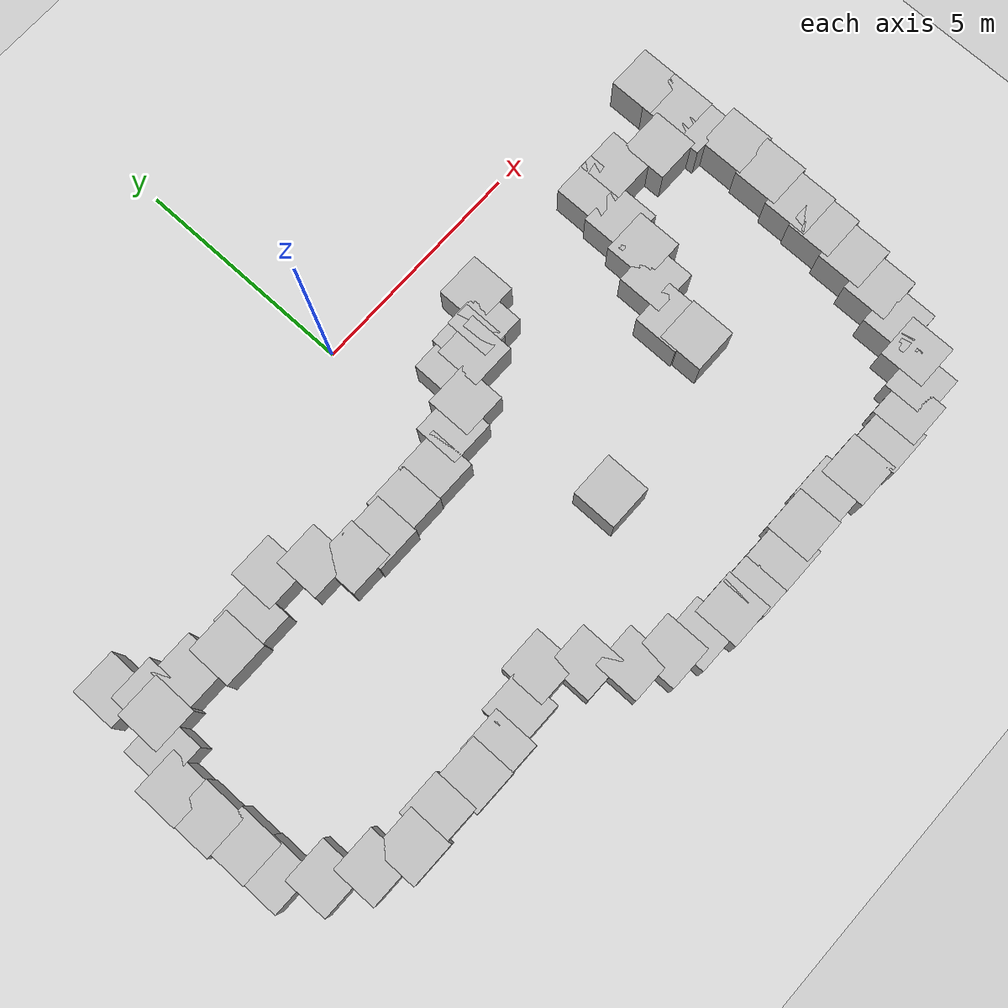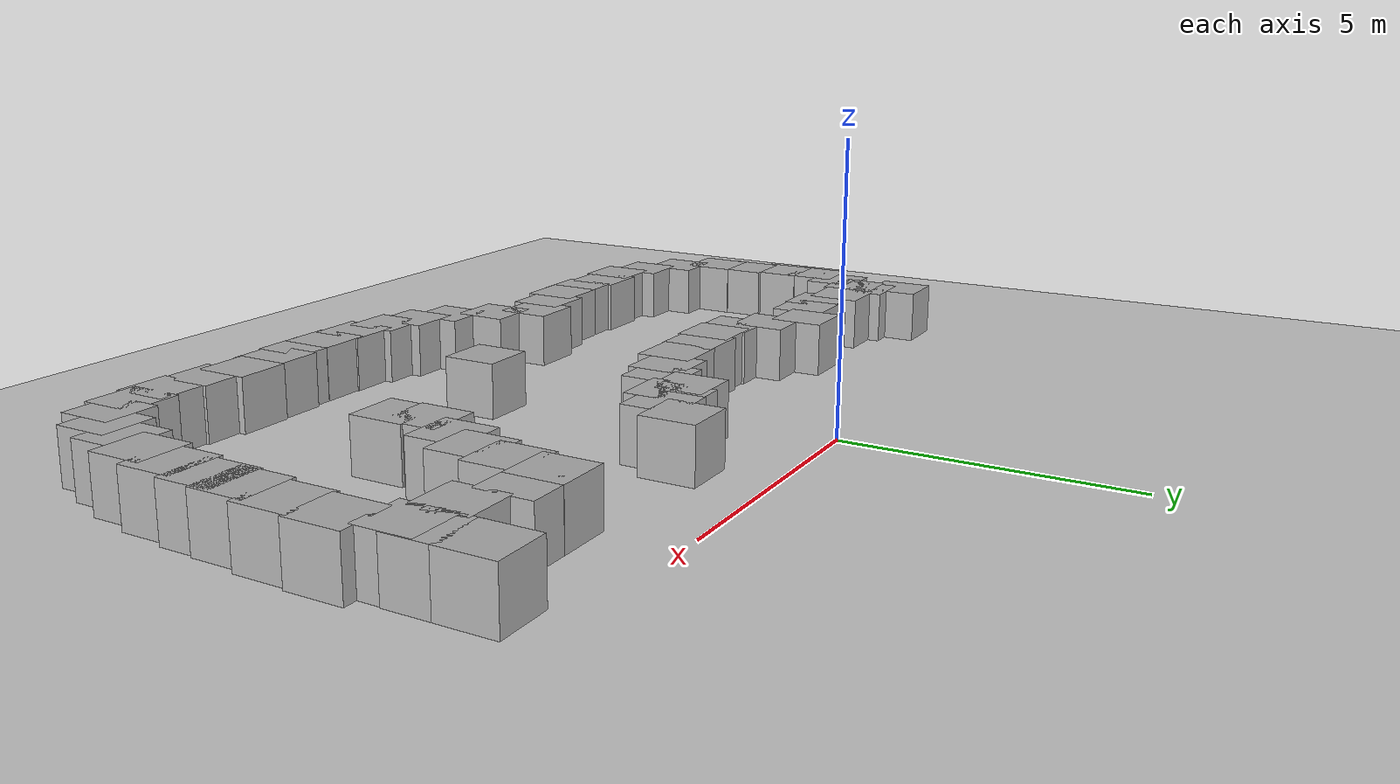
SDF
<sdf version="1.10">
 <world name="empty">
  <model name="ground_plane">
   <static>true</static>
   <link name="link">
    <collision name="collision">
     <geometry><plane><normal>0 0 1</normal><size>100 100</size></plane></geometry>
    </collision>
    <visual name="visual">
     <geometry><plane><normal>0 0 1</normal><size>100 100</size></plane></geometry>
     <material>
      <ambient>0.800000012 0.800000012 0.800000012 1</ambient>
      <diffuse>0.800000012 0.800000012 0.800000012 1</diffuse>
      <specular>0.800000012 0.800000012 0.800000012 1</specular>
     </material>
    </visual>
    <inertial>
     <mass>1</mass>
     <inertia><ixx>1</ixx><ixy>0</ixy><ixz>0</ixz><iyy>1</iyy><iyz>0</iyz><izz>1</izz></inertia>
    </inertial>
   </link>
   <pose>1 0 0 0 0 0</pose>
  </model>
  <model name="box_1_9">
   <pose>1.2775530779215851 -2.1466495993404471 0.5 0 0 0</pose>
   <link name="box_link">
    <inertial>
     <inertia><ixx>0.16666</ixx><ixy>0</ixy><ixz>0</ixz><iyy>0.16666</iyy><iyz>0</iyz><izz>0.16666</izz></inertia>
     <mass>1</mass>
    </inertial>
    <collision name="box_collision"><geometry><box><size>1 1 1</size></box></geometry></collision>
    <visual name="box_visual">
     <geometry><box><size>1 1 1</size></box></geometry>
     <material>
      <ambient>0.300000012 0.300000012 0.300000012 1</ambient>
      <diffuse>0.699999988 0.699999988 0.699999988 1</diffuse>
      <specular>1 1 1 1</specular>
     </material>
    </visual>
   </link>
   <static>false</static>
  </model>
  <model name="box_1_10">
   <pose>0.93467408876214897 -2.8259347033192812 0.5 0 0 0</pose>
   <link name="box_link">
    <inertial>
     <inertia><ixx>0.16666</ixx><ixy>0</ixy><ixz>0</ixz><iyy>0.16666</iyy><iyz>0</iyz><izz>0.16666</izz></inertia>
     <mass>1</mass>
    </inertial>
    <collision name="box_collision"><geometry><box><size>1 1 1</size></box></geometry></collision>
    <visual name="box_visual">
     <geometry><box><size>1 1 1</size></box></geometry>
     <material>
      <ambient>0.300000012 0.300000012 0.300000012 1</ambient>
      <diffuse>0.699999988 0.699999988 0.699999988 1</diffuse>
      <specular>1 1 1 1</specular>
     </material>
    </visual>
   </link>
   <static>false</static>
  </model>
  <model name="box_1_11">
   <pose>0.37469805444032767 -3.0175223676698071 0.5 0 0 0</pose>
   <link name="box_link">
    <inertial>
     <inertia><ixx>0.16666</ixx><ixy>0</ixy><ixz>0</ixz><iyy>0.16666</iyy><iyz>0</iyz><izz>0.16666</izz></inertia>
     <mass>1</mass>
    </inertial>
    <collision name="box_collision"><geometry><box><size>1 1 1</size></box></geometry></collision>
    <visual name="box_visual">
     <geometry><box><size>1 1 1</size></box></geometry>
     <material>
      <ambient>0.300000012 0.300000012 0.300000012 1</ambient>
      <diffuse>0.699999988 0.699999988 0.699999988 1</diffuse>
      <specular>1 1 1 1</specular>
     </material>
    </visual>
   </link>
   <static>false</static>
  </model>
  <model name="box_1_12">
   <pose>-0.42770161789153849 -3.2795379376203195 0.5 0 0 0</pose>
   <link name="box_link">
    <inertial>
     <inertia><ixx>0.16666</ixx><ixy>0</ixy><ixz>0</ixz><iyy>0.16666</iyy><iyz>0</iyz><izz>0.16666</izz></inertia>
     <mass>1</mass>
    </inertial>
    <collision name="box_collision"><geometry><box><size>1 1 1</size></box></geometry></collision>
    <visual name="box_visual">
     <geometry><box><size>1 1 1</size></box></geometry>
     <material>
      <ambient>0.300000012 0.300000012 0.300000012 1</ambient>
      <diffuse>0.699999988 0.699999988 0.699999988 1</diffuse>
      <specular>1 1 1 1</specular>
     </material>
    </visual>
   </link>
   <static>false</static>
  </model>
  <model name="box_1_13">
   <pose>-1.3258233026676089 -3.2989898374171354 0.5 0 0 0</pose>
   <link name="box_link">
    <inertial>
     <inertia><ixx>0.16666</ixx><ixy>0</ixy><ixz>0</ixz><iyy>0.16666</iyy><iyz>0</iyz><izz>0.16666</izz></inertia>
     <mass>1</mass>
    </inertial>
    <collision name="box_collision"><geometry><box><size>1 1 1</size></box></geometry></collision>
    <visual name="box_visual">
     <geometry><box><size>1 1 1</size></box></geometry>
     <material>
      <ambient>0.300000012 0.300000012 0.300000012 1</ambient>
      <diffuse>0.699999988 0.699999988 0.699999988 1</diffuse>
      <specular>1 1 1 1</specular>
     </material>
    </visual>
   </link>
   <static>false</static>
  </model>
  <model name="box_1_14">
   <pose>-2.0768754887676213 -3.3662396268547674 0.5 0 0 0</pose>
   <link name="box_link">
    <inertial>
     <inertia><ixx>0.16666</ixx><ixy>0</ixy><ixz>0</ixz><iyy>0.16666</iyy><iyz>0</iyz><izz>0.16666</izz></inertia>
     <mass>1</mass>
    </inertial>
    <collision name="box_collision"><geometry><box><size>1 1 1</size></box></geometry></collision>
    <visual name="box_visual">
     <geometry><box><size>1 1 1</size></box></geometry>
     <material>
      <ambient>0.300000012 0.300000012 0.300000012 1</ambient>
      <diffuse>0.699999988 0.699999988 0.699999988 1</diffuse>
      <specular>1 1 1 1</specular>
     </material>
    </visual>
   </link>
   <static>false</static>
  </model>
  <model name="box_1_15">
   <pose>-2.7543442581268471 -3.3133205585828689 0.5 0 0 0</pose>
   <link name="box_link">
    <inertial>
     <inertia><ixx>0.16666</ixx><ixy>0</ixy><ixz>0</ixz><iyy>0.16666</iyy><iyz>0</iyz><izz>0.16666</izz></inertia>
     <mass>1</mass>
    </inertial>
    <collision name="box_collision"><geometry><box><size>1 1 1</size></box></geometry></collision>
    <visual name="box_visual">
     <geometry><box><size>1 1 1</size></box></geometry>
     <material>
      <ambient>0.300000012 0.300000012 0.300000012 1</ambient>
      <diffuse>0.699999988 0.699999988 0.699999988 1</diffuse>
      <specular>1 1 1 1</specular>
     </material>
    </visual>
   </link>
   <static>false</static>
  </model>
  <model name="box_1_16">
   <pose>-3.2850646331188065 -2.8248588929853842 0.5 0 0 0</pose>
   <link name="box_link">
    <inertial>
     <inertia><ixx>0.16666</ixx><ixy>0</ixy><ixz>0</ixz><iyy>0.16666</iyy><iyz>0</iyz><izz>0.16666</izz></inertia>
     <mass>1</mass>
    </inertial>
    <collision name="box_collision"><geometry><box><size>1 1 1</size></box></geometry></collision>
    <visual name="box_visual">
     <geometry><box><size>1 1 1</size></box></geometry>
     <material>
      <ambient>0.300000012 0.300000012 0.300000012 1</ambient>
      <diffuse>0.699999988 0.699999988 0.699999988 1</diffuse>
      <specular>1 1 1 1</specular>
     </material>
    </visual>
   </link>
   <static>false</static>
  </model>
  <model name="box_1_17">
   <pose>-4.0074305669833405 -2.3352447081539247 0.5 0 0 0</pose>
   <link name="box_link">
    <inertial>
     <inertia><ixx>0.16666</ixx><ixy>0</ixy><ixz>0</ixz><iyy>0.16666</iyy><iyz>0</iyz><izz>0.16666</izz></inertia>
     <mass>1</mass>
    </inertial>
    <collision name="box_collision"><geometry><box><size>1 1 1</size></box></geometry></collision>
    <visual name="box_visual">
     <geometry><box><size>1 1 1</size></box></geometry>
     <material>
      <ambient>0.300000012 0.300000012 0.300000012 1</ambient>
      <diffuse>0.699999988 0.699999988 0.699999988 1</diffuse>
      <specular>1 1 1 1</specular>
     </material>
    </visual>
   </link>
   <static>false</static>
  </model>
  <model name="box_1_18">
   <pose>-4.8523228903674607 -2.6936452917574178 0.5 0 0 0</pose>
   <link name="box_link">
    <inertial>
     <inertia><ixx>0.16666</ixx><ixy>0</ixy><ixz>0</ixz><iyy>0.16666</iyy><iyz>0</iyz><izz>0.16666</izz></inertia>
     <mass>1</mass>
    </inertial>
    <collision name="box_collision"><geometry><box><size>1 1 1</size></box></geometry></collision>
    <visual name="box_visual">
     <geometry><box><size>1 1 1</size></box></geometry>
     <material>
      <ambient>0.300000012 0.300000012 0.300000012 1</ambient>
      <diffuse>0.699999988 0.699999988 0.699999988 1</diffuse>
      <specular>1 1 1 1</specular>
     </material>
    </visual>
   </link>
   <static>false</static>
  </model>
  <model name="box_1_19">
   <pose>-5.5509077407547895 -2.7376141223321713 0.5 0 0 0</pose>
   <link name="box_link">
    <inertial>
     <inertia><ixx>0.16666</ixx><ixy>0</ixy><ixz>0</ixz><iyy>0.16666</iyy><iyz>0</iyz><izz>0.16666</izz></inertia>
     <mass>1</mass>
    </inertial>
    <collision name="box_collision"><geometry><box><size>1 1 1</size></box></geometry></collision>
    <visual name="box_visual">
     <geometry><box><size>1 1 1</size></box></geometry>
     <material>
      <ambient>0.300000012 0.300000012 0.300000012 1</ambient>
      <diffuse>0.699999988 0.699999988 0.699999988 1</diffuse>
      <specular>1 1 1 1</specular>
     </material>
    </visual>
   </link>
   <static>false</static>
  </model>
  <model name="box_1_20">
   <pose>-6.3205569848411018 -2.5159512534173127 0.5 0 0 0</pose>
   <link name="box_link">
    <inertial>
     <inertia><ixx>0.16666</ixx><ixy>0</ixy><ixz>0</ixz><iyy>0.16666</iyy><iyz>0</iyz><izz>0.16666</izz></inertia>
     <mass>1</mass>
    </inertial>
    <collision name="box_collision"><geometry><box><size>1 1 1</size></box></geometry></collision>
    <visual name="box_visual">
     <geometry><box><size>1 1 1</size></box></geometry>
     <material>
      <ambient>0.300000012 0.300000012 0.300000012 1</ambient>
      <diffuse>0.699999988 0.699999988 0.699999988 1</diffuse>
      <specular>1 1 1 1</specular>
     </material>
    </visual>
   </link>
   <static>false</static>
  </model>
  <model name="box_1_21">
   <pose>-7.1347157242386761 -2.2923898937746197 0.5 0 0 0</pose>
   <link name="box_link">
    <inertial>
     <inertia><ixx>0.16666</ixx><ixy>0</ixy><ixz>0</ixz><iyy>0.16666</iyy><iyz>0</iyz><izz>0.16666</izz></inertia>
     <mass>1</mass>
    </inertial>
    <collision name="box_collision"><geometry><box><size>1 1 1</size></box></geometry></collision>
    <visual name="box_visual">
     <geometry><box><size>1 1 1</size></box></geometry>
     <material>
      <ambient>0.300000012 0.300000012 0.300000012 1</ambient>
      <diffuse>0.699999988 0.699999988 0.699999988 1</diffuse>
      <specular>1 1 1 1</specular>
     </material>
    </visual>
   </link>
   <static>false</static>
  </model>
  <model name="box_1_6">
   <pose>2.7144813404287431 -1.4841461804021554 0.5 0 0 0</pose>
   <link name="box_link">
    <inertial>
     <inertia><ixx>0.16666</ixx><ixy>0</ixy><ixz>0</ixz><iyy>0.16666</iyy><iyz>0</iyz><izz>0.16666</izz></inertia>
     <mass>1</mass>
    </inertial>
    <collision name="box_collision"><geometry><box><size>1 1 1</size></box></geometry></collision>
    <visual name="box_visual">
     <geometry><box><size>1 1 1</size></box></geometry>
     <material>
      <ambient>0.300000012 0.300000012 0.300000012 1</ambient>
      <diffuse>0.699999988 0.699999988 0.699999988 1</diffuse>
      <specular>1 1 1 1</specular>
     </material>
    </visual>
   </link>
   <static>false</static>
  </model>
  <model name="box_1_7">
   <pose>2.3474095850875694 -2.0197217037473632 0.5 0 0 0</pose>
   <link name="box_link">
    <inertial>
     <inertia><ixx>0.16666</ixx><ixy>0</ixy><ixz>0</ixz><iyy>0.16666</iyy><iyz>0</iyz><izz>0.16666</izz></inertia>
     <mass>1</mass>
    </inertial>
    <collision name="box_collision"><geometry><box><size>1 1 1</size></box></geometry></collision>
    <visual name="box_visual">
     <geometry><box><size>1 1 1</size></box></geometry>
     <material>
      <ambient>0.300000012 0.300000012 0.300000012 1</ambient>
      <diffuse>0.699999988 0.699999988 0.699999988 1</diffuse>
      <specular>1 1 1 1</specular>
     </material>
    </visual>
   </link>
   <static>false</static>
  </model>
  <model name="box_1_8">
   <pose>1.7857908999247307 -2.2853107042336149 0.5 0 0 0</pose>
   <link name="box_link">
    <inertial>
     <inertia><ixx>0.16666</ixx><ixy>0</ixy><ixz>0</ixz><iyy>0.16666</iyy><iyz>0</iyz><izz>0.16666</izz></inertia>
     <mass>1</mass>
    </inertial>
    <collision name="box_collision"><geometry><box><size>1 1 1</size></box></geometry></collision>
    <visual name="box_visual">
     <geometry><box><size>1 1 1</size></box></geometry>
     <material>
      <ambient>0.300000012 0.300000012 0.300000012 1</ambient>
      <diffuse>0.699999988 0.699999988 0.699999988 1</diffuse>
      <specular>1 1 1 1</specular>
     </material>
    </visual>
   </link>
   <static>false</static>
  </model>
  <model name="box_1_23">
   <pose>1.8839879778759476 -2.042191215790619 0.5 0 0 0</pose>
   <link name="box_link">
    <inertial>
     <inertia><ixx>0.16666</ixx><ixy>0</ixy><ixz>0</ixz><iyy>0.16666</iyy><iyz>0</iyz><izz>0.16666</izz></inertia>
     <mass>1</mass>
    </inertial>
    <collision name="box_collision"><geometry><box><size>1 1 1</size></box></geometry></collision>
    <visual name="box_visual">
     <geometry><box><size>1 1 1</size></box></geometry>
     <material>
      <ambient>0.300000012 0.300000012 0.300000012 1</ambient>
      <diffuse>0.699999988 0.699999988 0.699999988 1</diffuse>
      <specular>1 1 1 1</specular>
     </material>
    </visual>
   </link>
   <static>false</static>
  </model>
  <model name="box_1_46">
   <pose>-7.5224945462558557 -1.6943978846629224 0.5 0 0 0</pose>
   <link name="box_link">
    <inertial>
     <inertia><ixx>0.16666</ixx><ixy>0</ixy><ixz>0</ixz><iyy>0.16666</iyy><iyz>0</iyz><izz>0.16666</izz></inertia>
     <mass>1</mass>
    </inertial>
    <collision name="box_collision"><geometry><box><size>1 1 1</size></box></geometry></collision>
    <visual name="box_visual">
     <geometry><box><size>1 1 1</size></box></geometry>
     <material>
      <ambient>0.300000012 0.300000012 0.300000012 1</ambient>
      <diffuse>0.699999988 0.699999988 0.699999988 1</diffuse>
      <specular>1 1 1 1</specular>
     </material>
    </visual>
   </link>
   <static>false</static>
  </model>
  <model name="box_1_2_11">
   <pose>5.8495856519858611 -1.7898327212257428 0.5 0 0 0</pose>
   <link name="box_link">
    <inertial>
     <inertia><ixx>0.16666</ixx><ixy>0</ixy><ixz>0</ixz><iyy>0.16666</iyy><iyz>0</iyz><izz>0.16666</izz></inertia>
     <mass>1</mass>
    </inertial>
    <collision name="box_collision"><geometry><box><size>1 1 1</size></box></geometry></collision>
    <visual name="box_visual">
     <geometry><box><size>1 1 1</size></box></geometry>
     <material>
      <ambient>0.300000012 0.300000012 0.300000012 1</ambient>
      <diffuse>0.699999988 0.699999988 0.699999988 1</diffuse>
      <specular>1 1 1 1</specular>
     </material>
    </visual>
   </link>
   <static>false</static>
  </model>
  <model name="box_1_2_12">
   <pose>5.7510391424379428 -2.5971266244247042 0.5 0 0 0</pose>
   <link name="box_link">
    <inertial>
     <inertia><ixx>0.16666</ixx><ixy>0</ixy><ixz>0</ixz><iyy>0.16666</iyy><iyz>0</iyz><izz>0.16666</izz></inertia>
     <mass>1</mass>
    </inertial>
    <collision name="box_collision"><geometry><box><size>1 1 1</size></box></geometry></collision>
    <visual name="box_visual">
     <geometry><box><size>1 1 1</size></box></geometry>
     <material>
      <ambient>0.300000012 0.300000012 0.300000012 1</ambient>
      <diffuse>0.699999988 0.699999988 0.699999988 1</diffuse>
      <specular>1 1 1 1</specular>
     </material>
    </visual>
   </link>
   <static>false</static>
  </model>
  <model name="box_1_2_13">
   <pose>5.5995468481408306 -3.3284209046199047 0.5 0 0 0</pose>
   <link name="box_link">
    <inertial>
     <inertia><ixx>0.16666</ixx><ixy>0</ixy><ixz>0</ixz><iyy>0.16666</iyy><iyz>0</iyz><izz>0.16666</izz></inertia>
     <mass>1</mass>
    </inertial>
    <collision name="box_collision"><geometry><box><size>1 1 1</size></box></geometry></collision>
    <visual name="box_visual">
     <geometry><box><size>1 1 1</size></box></geometry>
     <material>
      <ambient>0.300000012 0.300000012 0.300000012 1</ambient>
      <diffuse>0.699999988 0.699999988 0.699999988 1</diffuse>
      <specular>1 1 1 1</specular>
     </material>
    </visual>
   </link>
   <static>false</static>
  </model>
  <model name="box_1_2_14">
   <pose>5.2774600160337188 -3.9365319176564455 0.5 0 0 0</pose>
   <link name="box_link">
    <inertial>
     <inertia><ixx>0.16666</ixx><ixy>0</ixy><ixz>0</ixz><iyy>0.16666</iyy><iyz>0</iyz><izz>0.16666</izz></inertia>
     <mass>1</mass>
    </inertial>
    <collision name="box_collision"><geometry><box><size>1 1 1</size></box></geometry></collision>
    <visual name="box_visual">
     <geometry><box><size>1 1 1</size></box></geometry>
     <material>
      <ambient>0.300000012 0.300000012 0.300000012 1</ambient>
      <diffuse>0.699999988 0.699999988 0.699999988 1</diffuse>
      <specular>1 1 1 1</specular>
     </material>
    </visual>
   </link>
   <static>false</static>
  </model>
  <model name="box_1_2_15">
   <pose>4.8587469465286137 -4.7159438934698752 0.5 0 0 0</pose>
   <link name="box_link">
    <inertial>
     <inertia><ixx>0.16666</ixx><ixy>0</ixy><ixz>0</ixz><iyy>0.16666</iyy><iyz>0</iyz><izz>0.16666</izz></inertia>
     <mass>1</mass>
    </inertial>
    <collision name="box_collision"><geometry><box><size>1 1 1</size></box></geometry></collision>
    <visual name="box_visual">
     <geometry><box><size>1 1 1</size></box></geometry>
     <material>
      <ambient>0.300000012 0.300000012 0.300000012 1</ambient>
      <diffuse>0.699999988 0.699999988 0.699999988 1</diffuse>
      <specular>1 1 1 1</specular>
     </material>
    </visual>
   </link>
   <static>false</static>
  </model>
  <model name="box_1_2_16">
   <pose>4.9059503872547134 -5.3024912448331021 0.5 0 0 0</pose>
   <link name="box_link">
    <inertial>
     <inertia><ixx>0.16666</ixx><ixy>0</ixy><ixz>0</ixz><iyy>0.16666</iyy><iyz>0</iyz><izz>0.16666</izz></inertia>
     <mass>1</mass>
    </inertial>
    <collision name="box_collision"><geometry><box><size>1 1 1</size></box></geometry></collision>
    <visual name="box_visual">
     <geometry><box><size>1 1 1</size></box></geometry>
     <material>
      <ambient>0.300000012 0.300000012 0.300000012 1</ambient>
      <diffuse>0.699999988 0.699999988 0.699999988 1</diffuse>
      <specular>1 1 1 1</specular>
     </material>
    </visual>
   </link>
   <static>false</static>
  </model>
  <model name="box_1_2_17">
   <pose>6.5401228591799381 -1.7940619820092456 0.5 0 0 0</pose>
   <link name="box_link">
    <inertial>
     <inertia><ixx>0.16666</ixx><ixy>0</ixy><ixz>0</ixz><iyy>0.16666</iyy><iyz>0</iyz><izz>0.16666</izz></inertia>
     <mass>1</mass>
    </inertial>
    <collision name="box_collision"><geometry><box><size>1 1 1</size></box></geometry></collision>
    <visual name="box_visual">
     <geometry><box><size>1 1 1</size></box></geometry>
     <material>
      <ambient>0.300000012 0.300000012 0.300000012 1</ambient>
      <diffuse>0.699999988 0.699999988 0.699999988 1</diffuse>
      <specular>1 1 1 1</specular>
     </material>
    </visual>
   </link>
   <static>false</static>
  </model>
  <model name="box_1_2_18">
   <pose>7.4512002156976749 -2.1660651048060826 0.5 0 0 0</pose>
   <link name="box_link">
    <inertial>
     <inertia><ixx>0.16666</ixx><ixy>0</ixy><ixz>0</ixz><iyy>0.16666</iyy><iyz>0</iyz><izz>0.16666</izz></inertia>
     <mass>1</mass>
    </inertial>
    <collision name="box_collision"><geometry><box><size>1 1 1</size></box></geometry></collision>
    <visual name="box_visual">
     <geometry><box><size>1 1 1</size></box></geometry>
     <material>
      <ambient>0.300000012 0.300000012 0.300000012 1</ambient>
      <diffuse>0.699999988 0.699999988 0.699999988 1</diffuse>
      <specular>1 1 1 1</specular>
     </material>
    </visual>
   </link>
   <static>false</static>
  </model>
  <model name="box_1_2_19">
   <pose>8.3147976647431836 -2.34266892477675 0.5 0 0 0</pose>
   <link name="box_link">
    <inertial>
     <inertia><ixx>0.16666</ixx><ixy>0</ixy><ixz>0</ixz><iyy>0.16666</iyy><iyz>0</iyz><izz>0.16666</izz></inertia>
     <mass>1</mass>
    </inertial>
    <collision name="box_collision"><geometry><box><size>1 1 1</size></box></geometry></collision>
    <visual name="box_visual">
     <geometry><box><size>1 1 1</size></box></geometry>
     <material>
      <ambient>0.300000012 0.300000012 0.300000012 1</ambient>
      <diffuse>0.699999988 0.699999988 0.699999988 1</diffuse>
      <specular>1 1 1 1</specular>
     </material>
    </visual>
   </link>
   <static>false</static>
  </model>
  <model name="box_1_2_20">
   <pose>8.5591877167606931 -3.2510351342062895 0.5 0 0 0</pose>
   <link name="box_link">
    <inertial>
     <inertia><ixx>0.16666</ixx><ixy>0</ixy><ixz>0</ixz><iyy>0.16666</iyy><iyz>0</iyz><izz>0.16666</izz></inertia>
     <mass>1</mass>
    </inertial>
    <collision name="box_collision"><geometry><box><size>1 1 1</size></box></geometry></collision>
    <visual name="box_visual">
     <geometry><box><size>1 1 1</size></box></geometry>
     <material>
      <ambient>0.300000012 0.300000012 0.300000012 1</ambient>
      <diffuse>0.699999988 0.699999988 0.699999988 1</diffuse>
      <specular>1 1 1 1</specular>
     </material>
    </visual>
   </link>
   <static>false</static>
  </model>
  <model name="box_1_2_21">
   <pose>8.5076640054100263 -4.1817507290597939 0.5 0 0 0</pose>
   <link name="box_link">
    <inertial>
     <inertia><ixx>0.16666</ixx><ixy>0</ixy><ixz>0</ixz><iyy>0.16666</iyy><iyz>0</iyz><izz>0.16666</izz></inertia>
     <mass>1</mass>
    </inertial>
    <collision name="box_collision"><geometry><box><size>1 1 1</size></box></geometry></collision>
    <visual name="box_visual">
     <geometry><box><size>1 1 1</size></box></geometry>
     <material>
      <ambient>0.300000012 0.300000012 0.300000012 1</ambient>
      <diffuse>0.699999988 0.699999988 0.699999988 1</diffuse>
      <specular>1 1 1 1</specular>
     </material>
    </visual>
   </link>
   <static>false</static>
  </model>
  <model name="box_1_2_22">
   <pose>8.4051121984648134 -5.0380455419683319 0.5 0 0 0</pose>
   <link name="box_link">
    <inertial>
     <inertia><ixx>0.16666</ixx><ixy>0</ixy><ixz>0</ixz><iyy>0.16666</iyy><iyz>0</iyz><izz>0.16666</izz></inertia>
     <mass>1</mass>
    </inertial>
    <collision name="box_collision"><geometry><box><size>1 1 1</size></box></geometry></collision>
    <visual name="box_visual">
     <geometry><box><size>1 1 1</size></box></geometry>
     <material>
      <ambient>0.300000012 0.300000012 0.300000012 1</ambient>
      <diffuse>0.699999988 0.699999988 0.699999988 1</diffuse>
      <specular>1 1 1 1</specular>
     </material>
    </visual>
   </link>
   <static>false</static>
  </model>
  <model name="box_1_2_23">
   <pose>8.3598808149091131 -5.6827718426515315 0.5 0 0 0</pose>
   <link name="box_link">
    <inertial>
     <inertia><ixx>0.16666</ixx><ixy>0</ixy><ixz>0</ixz><iyy>0.16666</iyy><iyz>0</iyz><izz>0.16666</izz></inertia>
     <mass>1</mass>
    </inertial>
    <collision name="box_collision"><geometry><box><size>1 1 1</size></box></geometry></collision>
    <visual name="box_visual">
     <geometry><box><size>1 1 1</size></box></geometry>
     <material>
      <ambient>0.300000012 0.300000012 0.300000012 1</ambient>
      <diffuse>0.699999988 0.699999988 0.699999988 1</diffuse>
      <specular>1 1 1 1</specular>
     </material>
    </visual>
   </link>
   <static>false</static>
  </model>
  <model name="box_1_2_24">
   <pose>8.2554782616272888 -6.5373415904783645 0.5 0 0 0</pose>
   <link name="box_link">
    <inertial>
     <inertia><ixx>0.16666</ixx><ixy>0</ixy><ixz>0</ixz><iyy>0.16666</iyy><iyz>0</iyz><izz>0.16666</izz></inertia>
     <mass>1</mass>
    </inertial>
    <collision name="box_collision"><geometry><box><size>1 1 1</size></box></geometry></collision>
    <visual name="box_visual">
     <geometry><box><size>1 1 1</size></box></geometry>
     <material>
      <ambient>0.300000012 0.300000012 0.300000012 1</ambient>
      <diffuse>0.699999988 0.699999988 0.699999988 1</diffuse>
      <specular>1 1 1 1</specular>
     </material>
    </visual>
   </link>
   <static>false</static>
  </model>
  <model name="box_1_2_25">
   <pose>8.0823318080353506 -7.3206568603986728 0.5 0 0 0</pose>
   <link name="box_link">
    <inertial>
     <inertia><ixx>0.16666</ixx><ixy>0</ixy><ixz>0</ixz><iyy>0.16666</iyy><iyz>0</iyz><izz>0.16666</izz></inertia>
     <mass>1</mass>
    </inertial>
    <collision name="box_collision"><geometry><box><size>1 1 1</size></box></geometry></collision>
    <visual name="box_visual">
     <geometry><box><size>1 1 1</size></box></geometry>
     <material>
      <ambient>0.300000012 0.300000012 0.300000012 1</ambient>
      <diffuse>0.699999988 0.699999988 0.699999988 1</diffuse>
      <specular>1 1 1 1</specular>
     </material>
    </visual>
   </link>
   <static>false</static>
  </model>
  <model name="box_1_2_26">
   <pose>7.8091221771159152 -8.0323444892851921 0.5 0 0 0</pose>
   <link name="box_link">
    <inertial>
     <inertia><ixx>0.16666</ixx><ixy>0</ixy><ixz>0</ixz><iyy>0.16666</iyy><iyz>0</iyz><izz>0.16666</izz></inertia>
     <mass>1</mass>
    </inertial>
    <collision name="box_collision"><geometry><box><size>1 1 1</size></box></geometry></collision>
    <visual name="box_visual">
     <geometry><box><size>1 1 1</size></box></geometry>
     <material>
      <ambient>0.300000012 0.300000012 0.300000012 1</ambient>
      <diffuse>0.699999988 0.699999988 0.699999988 1</diffuse>
      <specular>1 1 1 1</specular>
     </material>
    </visual>
   </link>
   <static>false</static>
  </model>
  <model name="box_1_2_27">
   <pose>7.5111210027015787 -8.7152394445591934 0.5 0 0 0</pose>
   <link name="box_link">
    <inertial>
     <inertia><ixx>0.16666</ixx><ixy>0</ixy><ixz>0</ixz><iyy>0.16666</iyy><iyz>0</iyz><izz>0.16666</izz></inertia>
     <mass>1</mass>
    </inertial>
    <collision name="box_collision"><geometry><box><size>1 1 1</size></box></geometry></collision>
    <visual name="box_visual">
     <geometry><box><size>1 1 1</size></box></geometry>
     <material>
      <ambient>0.300000012 0.300000012 0.300000012 1</ambient>
      <diffuse>0.699999988 0.699999988 0.699999988 1</diffuse>
      <specular>1 1 1 1</specular>
     </material>
    </visual>
   </link>
   <static>false</static>
  </model>
  <model name="box_1_2_28">
   <pose>7.0642680362756636 -9.1733594779799681 0.5 0 0 0</pose>
   <link name="box_link">
    <inertial>
     <inertia><ixx>0.16666</ixx><ixy>0</ixy><ixz>0</ixz><iyy>0.16666</iyy><iyz>0</iyz><izz>0.16666</izz></inertia>
     <mass>1</mass>
    </inertial>
    <collision name="box_collision"><geometry><box><size>1 1 1</size></box></geometry></collision>
    <visual name="box_visual">
     <geometry><box><size>1 1 1</size></box></geometry>
     <material>
      <ambient>0.300000012 0.300000012 0.300000012 1</ambient>
      <diffuse>0.699999988 0.699999988 0.699999988 1</diffuse>
      <specular>1 1 1 1</specular>
     </material>
    </visual>
   </link>
   <static>false</static>
  </model>
  <model name="box_1_2_29">
   <pose>6.4964752983918288 -9.3370559851348034 0.5 0 0 0</pose>
   <link name="box_link">
    <inertial>
     <inertia><ixx>0.16666</ixx><ixy>0</ixy><ixz>0</ixz><iyy>0.16666</iyy><iyz>0</iyz><izz>0.16666</izz></inertia>
     <mass>1</mass>
    </inertial>
    <collision name="box_collision"><geometry><box><size>1 1 1</size></box></geometry></collision>
    <visual name="box_visual">
     <geometry><box><size>1 1 1</size></box></geometry>
     <material>
      <ambient>0.300000012 0.300000012 0.300000012 1</ambient>
      <diffuse>0.699999988 0.699999988 0.699999988 1</diffuse>
      <specular>1 1 1 1</specular>
     </material>
    </visual>
   </link>
   <static>false</static>
  </model>
  <model name="box_1_2_30">
   <pose>5.8087035999162708 -9.404590060397835 0.5 0 0 0</pose>
   <link name="box_link">
    <inertial>
     <inertia><ixx>0.16666</ixx><ixy>0</ixy><ixz>0</ixz><iyy>0.16666</iyy><iyz>0</iyz><izz>0.16666</izz></inertia>
     <mass>1</mass>
    </inertial>
    <collision name="box_collision"><geometry><box><size>1 1 1</size></box></geometry></collision>
    <visual name="box_visual">
     <geometry><box><size>1 1 1</size></box></geometry>
     <material>
      <ambient>0.300000012 0.300000012 0.300000012 1</ambient>
      <diffuse>0.699999988 0.699999988 0.699999988 1</diffuse>
      <specular>1 1 1 1</specular>
     </material>
    </visual>
   </link>
   <static>false</static>
  </model>
  <model name="box_1_2_31">
   <pose>4.9228368065896273 -9.346807560398366 0.5 0 0 0</pose>
   <link name="box_link">
    <inertial>
     <inertia><ixx>0.16666</ixx><ixy>0</ixy><ixz>0</ixz><iyy>0.16666</iyy><iyz>0</iyz><izz>0.16666</izz></inertia>
     <mass>1</mass>
    </inertial>
    <collision name="box_collision"><geometry><box><size>1 1 1</size></box></geometry></collision>
    <visual name="box_visual">
     <geometry><box><size>1 1 1</size></box></geometry>
     <material>
      <ambient>0.300000012 0.300000012 0.300000012 1</ambient>
      <diffuse>0.699999988 0.699999988 0.699999988 1</diffuse>
      <specular>1 1 1 1</specular>
     </material>
    </visual>
   </link>
   <static>false</static>
  </model>
  <model name="box_1_2_32">
   <pose>4.2372482783219505 -9.2187410525517954 0.5 0 0 0</pose>
   <link name="box_link">
    <inertial>
     <inertia><ixx>0.16666</ixx><ixy>0</ixy><ixz>0</ixz><iyy>0.16666</iyy><iyz>0</iyz><izz>0.16666</izz></inertia>
     <mass>1</mass>
    </inertial>
    <collision name="box_collision"><geometry><box><size>1 1 1</size></box></geometry></collision>
    <visual name="box_visual">
     <geometry><box><size>1 1 1</size></box></geometry>
     <material>
      <ambient>0.300000012 0.300000012 0.300000012 1</ambient>
      <diffuse>0.699999988 0.699999988 0.699999988 1</diffuse>
      <specular>1 1 1 1</specular>
     </material>
    </visual>
   </link>
   <static>false</static>
  </model>
  <model name="box_1_2_33">
   <pose>3.402167512758921 -9.2554053571684065 0.5 0 0 0</pose>
   <link name="box_link">
    <inertial>
     <inertia><ixx>0.16666</ixx><ixy>0</ixy><ixz>0</ixz><iyy>0.16666</iyy><iyz>0</iyz><izz>0.16666</izz></inertia>
     <mass>1</mass>
    </inertial>
    <collision name="box_collision"><geometry><box><size>1 1 1</size></box></geometry></collision>
    <visual name="box_visual">
     <geometry><box><size>1 1 1</size></box></geometry>
     <material>
      <ambient>0.300000012 0.300000012 0.300000012 1</ambient>
      <diffuse>0.699999988 0.699999988 0.699999988 1</diffuse>
      <specular>1 1 1 1</specular>
     </material>
    </visual>
   </link>
   <static>false</static>
  </model>
  <model name="box_1_2_34">
   <pose>2.7166120735020369 -9.3208173929249991 0.5 0 0 0</pose>
   <link name="box_link">
    <inertial>
     <inertia><ixx>0.16666</ixx><ixy>0</ixy><ixz>0</ixz><iyy>0.16666</iyy><iyz>0</iyz><izz>0.16666</izz></inertia>
     <mass>1</mass>
    </inertial>
    <collision name="box_collision"><geometry><box><size>1 1 1</size></box></geometry></collision>
    <visual name="box_visual">
     <geometry><box><size>1 1 1</size></box></geometry>
     <material>
      <ambient>0.300000012 0.300000012 0.300000012 1</ambient>
      <diffuse>0.699999988 0.699999988 0.699999988 1</diffuse>
      <specular>1 1 1 1</specular>
     </material>
    </visual>
   </link>
   <static>false</static>
  </model>
  <model name="box_1_2_35">
   <pose>2.0571643186835371 -9.314888614221605 0.5 0 0 0</pose>
   <link name="box_link">
    <inertial>
     <inertia><ixx>0.16666</ixx><ixy>0</ixy><ixz>0</ixz><iyy>0.16666</iyy><iyz>0</iyz><izz>0.16666</izz></inertia>
     <mass>1</mass>
    </inertial>
    <collision name="box_collision"><geometry><box><size>1 1 1</size></box></geometry></collision>
    <visual name="box_visual">
     <geometry><box><size>1 1 1</size></box></geometry>
     <material>
      <ambient>0.300000012 0.300000012 0.300000012 1</ambient>
      <diffuse>0.699999988 0.699999988 0.699999988 1</diffuse>
      <specular>1 1 1 1</specular>
     </material>
    </visual>
   </link>
   <static>false</static>
  </model>
  <model name="box_1_2_36">
   <pose>1.2753108245801155 -9.280388613628924 0.5 0 0 0</pose>
   <link name="box_link">
    <inertial>
     <inertia><ixx>0.16666</ixx><ixy>0</ixy><ixz>0</ixz><iyy>0.16666</iyy><iyz>0</iyz><izz>0.16666</izz></inertia>
     <mass>1</mass>
    </inertial>
    <collision name="box_collision"><geometry><box><size>1 1 1</size></box></geometry></collision>
    <visual name="box_visual">
     <geometry><box><size>1 1 1</size></box></geometry>
     <material>
      <ambient>0.300000012 0.300000012 0.300000012 1</ambient>
      <diffuse>0.699999988 0.699999988 0.699999988 1</diffuse>
      <specular>1 1 1 1</specular>
     </material>
    </visual>
   </link>
   <static>false</static>
  </model>
  <model name="box_1_2_37">
   <pose>0.51964511894058019 -9.1264048024780013 0.5 0 0 0</pose>
   <link name="box_link">
    <inertial>
     <inertia><ixx>0.16666</ixx><ixy>0</ixy><ixz>0</ixz><iyy>0.16666</iyy><iyz>0</iyz><izz>0.16666</izz></inertia>
     <mass>1</mass>
    </inertial>
    <collision name="box_collision"><geometry><box><size>1 1 1</size></box></geometry></collision>
    <visual name="box_visual">
     <geometry><box><size>1 1 1</size></box></geometry>
     <material>
      <ambient>0.300000012 0.300000012 0.300000012 1</ambient>
      <diffuse>0.699999988 0.699999988 0.699999988 1</diffuse>
      <specular>1 1 1 1</specular>
     </material>
    </visual>
   </link>
   <static>false</static>
  </model>
  <model name="box_1_2_38">
   <pose>-0.088695451387580615 -8.9240668892543766 0.5 0 0 0</pose>
   <link name="box_link">
    <inertial>
     <inertia><ixx>0.16666</ixx><ixy>0</ixy><ixz>0</ixz><iyy>0.16666</iyy><iyz>0</iyz><izz>0.16666</izz></inertia>
     <mass>1</mass>
    </inertial>
    <collision name="box_collision"><geometry><box><size>1 1 1</size></box></geometry></collision>
    <visual name="box_visual">
     <geometry><box><size>1 1 1</size></box></geometry>
     <material>
      <ambient>0.300000012 0.300000012 0.300000012 1</ambient>
      <diffuse>0.699999988 0.699999988 0.699999988 1</diffuse>
      <specular>1 1 1 1</specular>
     </material>
    </visual>
   </link>
   <static>false</static>
  </model>
  <model name="box_1_2_39">
   <pose>-0.7202640851351132 -8.5518783500811644 0.5 0 0 0</pose>
   <link name="box_link">
    <inertial>
     <inertia><ixx>0.16666</ixx><ixy>0</ixy><ixz>0</ixz><iyy>0.16666</iyy><iyz>0</iyz><izz>0.16666</izz></inertia>
     <mass>1</mass>
    </inertial>
    <collision name="box_collision"><geometry><box><size>1 1 1</size></box></geometry></collision>
    <visual name="box_visual">
     <geometry><box><size>1 1 1</size></box></geometry>
     <material>
      <ambient>0.300000012 0.300000012 0.300000012 1</ambient>
      <diffuse>0.699999988 0.699999988 0.699999988 1</diffuse>
      <specular>1 1 1 1</specular>
     </material>
    </visual>
   </link>
   <static>false</static>
  </model>
  <model name="box_1_2_40">
   <pose>-1.3024611415343972 -7.8871351689373927 0.5 0 0 0</pose>
   <link name="box_link">
    <inertial>
     <inertia><ixx>0.16666</ixx><ixy>0</ixy><ixz>0</ixz><iyy>0.16666</iyy><iyz>0</iyz><izz>0.16666</izz></inertia>
     <mass>1</mass>
    </inertial>
    <collision name="box_collision"><geometry><box><size>1 1 1</size></box></geometry></collision>
    <visual name="box_visual">
     <geometry><box><size>1 1 1</size></box></geometry>
     <material>
      <ambient>0.300000012 0.300000012 0.300000012 1</ambient>
      <diffuse>0.699999988 0.699999988 0.699999988 1</diffuse>
      <specular>1 1 1 1</specular>
     </material>
    </visual>
   </link>
   <static>false</static>
  </model>
  <model name="box_1_2_41">
   <pose>-1.9319176279441561 -7.2993318228845609 0.5 0 0 0</pose>
   <link name="box_link">
    <inertial>
     <inertia><ixx>0.16666</ixx><ixy>0</ixy><ixz>0</ixz><iyy>0.16666</iyy><iyz>0</iyz><izz>0.16666</izz></inertia>
     <mass>1</mass>
    </inertial>
    <collision name="box_collision"><geometry><box><size>1 1 1</size></box></geometry></collision>
    <visual name="box_visual">
     <geometry><box><size>1 1 1</size></box></geometry>
     <material>
      <ambient>0.300000012 0.300000012 0.300000012 1</ambient>
      <diffuse>0.699999988 0.699999988 0.699999988 1</diffuse>
      <specular>1 1 1 1</specular>
     </material>
    </visual>
   </link>
   <static>false</static>
  </model>
  <model name="box_1_2_42">
   <pose>-2.7333114855135667 -7.5351365646067059 0.5 0 0 0</pose>
   <link name="box_link">
    <inertial>
     <inertia><ixx>0.16666</ixx><ixy>0</ixy><ixz>0</ixz><iyy>0.16666</iyy><iyz>0</iyz><izz>0.16666</izz></inertia>
     <mass>1</mass>
    </inertial>
    <collision name="box_collision"><geometry><box><size>1 1 1</size></box></geometry></collision>
    <visual name="box_visual">
     <geometry><box><size>1 1 1</size></box></geometry>
     <material>
      <ambient>0.300000012 0.300000012 0.300000012 1</ambient>
      <diffuse>0.699999988 0.699999988 0.699999988 1</diffuse>
      <specular>1 1 1 1</specular>
     </material>
    </visual>
   </link>
   <static>false</static>
  </model>
  <model name="box_1_2_43">
   <pose>-3.5321605803915319 -7.7185151814330037 0.5 0 0 0</pose>
   <link name="box_link">
    <inertial>
     <inertia><ixx>0.16666</ixx><ixy>0</ixy><ixz>0</ixz><iyy>0.16666</iyy><iyz>0</iyz><izz>0.16666</izz></inertia>
     <mass>1</mass>
    </inertial>
    <collision name="box_collision"><geometry><box><size>1 1 1</size></box></geometry></collision>
    <visual name="box_visual">
     <geometry><box><size>1 1 1</size></box></geometry>
     <material>
      <ambient>0.300000012 0.300000012 0.300000012 1</ambient>
      <diffuse>0.699999988 0.699999988 0.699999988 1</diffuse>
      <specular>1 1 1 1</specular>
     </material>
    </visual>
   </link>
   <static>false</static>
  </model>
  <model name="box_1_2_44">
   <pose>-4.1860238532812923 -7.7375145369042606 0.5 0 0 0</pose>
   <link name="box_link">
    <inertial>
     <inertia><ixx>0.16666</ixx><ixy>0</ixy><ixz>0</ixz><iyy>0.16666</iyy><iyz>0</iyz><izz>0.16666</izz></inertia>
     <mass>1</mass>
    </inertial>
    <collision name="box_collision"><geometry><box><size>1 1 1</size></box></geometry></collision>
    <visual name="box_visual">
     <geometry><box><size>1 1 1</size></box></geometry>
     <material>
      <ambient>0.300000012 0.300000012 0.300000012 1</ambient>
      <diffuse>0.699999988 0.699999988 0.699999988 1</diffuse>
      <specular>1 1 1 1</specular>
     </material>
    </visual>
   </link>
   <static>false</static>
  </model>
  <model name="box_1_2_45">
   <pose>-5.1039860540543778 -7.655653011872511 0.5 0 0 0</pose>
   <link name="box_link">
    <inertial>
     <inertia><ixx>0.16666</ixx><ixy>0</ixy><ixz>0</ixz><iyy>0.16666</iyy><iyz>0</iyz><izz>0.16666</izz></inertia>
     <mass>1</mass>
    </inertial>
    <collision name="box_collision"><geometry><box><size>1 1 1</size></box></geometry></collision>
    <visual name="box_visual">
     <geometry><box><size>1 1 1</size></box></geometry>
     <material>
      <ambient>0.300000012 0.300000012 0.300000012 1</ambient>
      <diffuse>0.699999988 0.699999988 0.699999988 1</diffuse>
      <specular>1 1 1 1</specular>
     </material>
    </visual>
   </link>
   <static>false</static>
  </model>
  <model name="box_1_2_46">
   <pose>-5.8754953241649313 -7.7436580487731259 0.5 0 0 0</pose>
   <link name="box_link">
    <inertial>
     <inertia><ixx>0.16666</ixx><ixy>0</ixy><ixz>0</ixz><iyy>0.16666</iyy><iyz>0</iyz><izz>0.16666</izz></inertia>
     <mass>1</mass>
    </inertial>
    <collision name="box_collision"><geometry><box><size>1 1 1</size></box></geometry></collision>
    <visual name="box_visual">
     <geometry><box><size>1 1 1</size></box></geometry>
     <material>
      <ambient>0.300000012 0.300000012 0.300000012 1</ambient>
      <diffuse>0.699999988 0.699999988 0.699999988 1</diffuse>
      <specular>1 1 1 1</specular>
     </material>
    </visual>
   </link>
   <static>false</static>
  </model>
  <model name="box_1_2_47">
   <pose>-6.6199343196068412 -7.4508779828428491 0.5 0 0 0</pose>
   <link name="box_link">
    <inertial>
     <inertia><ixx>0.16666</ixx><ixy>0</ixy><ixz>0</ixz><iyy>0.16666</iyy><iyz>0</iyz><izz>0.16666</izz></inertia>
     <mass>1</mass>
    </inertial>
    <collision name="box_collision"><geometry><box><size>1 1 1</size></box></geometry></collision>
    <visual name="box_visual">
     <geometry><box><size>1 1 1</size></box></geometry>
     <material>
      <ambient>0.300000012 0.300000012 0.300000012 1</ambient>
      <diffuse>0.699999988 0.699999988 0.699999988 1</diffuse>
      <specular>1 1 1 1</specular>
     </material>
    </visual>
   </link>
   <static>false</static>
  </model>
  <model name="box_1_2_48">
   <pose>-7.3395345046208407 -6.9348364120508377 0.5 0 0 0</pose>
   <link name="box_link">
    <inertial>
     <inertia><ixx>0.16666</ixx><ixy>0</ixy><ixz>0</ixz><iyy>0.16666</iyy><iyz>0</iyz><izz>0.16666</izz></inertia>
     <mass>1</mass>
    </inertial>
    <collision name="box_collision"><geometry><box><size>1 1 1</size></box></geometry></collision>
    <visual name="box_visual">
     <geometry><box><size>1 1 1</size></box></geometry>
     <material>
      <ambient>0.300000012 0.300000012 0.300000012 1</ambient>
      <diffuse>0.699999988 0.699999988 0.699999988 1</diffuse>
      <specular>1 1 1 1</specular>
     </material>
    </visual>
   </link>
   <static>false</static>
  </model>
  <model name="box_1_2_49">
   <pose>-7.8898633945449754 -6.228329547343348 0.5 0 0 0</pose>
   <link name="box_link">
    <inertial>
     <inertia><ixx>0.16666</ixx><ixy>0</ixy><ixz>0</ixz><iyy>0.16666</iyy><iyz>0</iyz><izz>0.16666</izz></inertia>
     <mass>1</mass>
    </inertial>
    <collision name="box_collision"><geometry><box><size>1 1 1</size></box></geometry></collision>
    <visual name="box_visual">
     <geometry><box><size>1 1 1</size></box></geometry>
     <material>
      <ambient>0.300000012 0.300000012 0.300000012 1</ambient>
      <diffuse>0.699999988 0.699999988 0.699999988 1</diffuse>
      <specular>1 1 1 1</specular>
     </material>
    </visual>
   </link>
   <static>false</static>
  </model>
  <model name="box_1_2_50">
   <pose>-7.9116899291776388 -5.4554480250188071 0.5 0 0 0</pose>
   <link name="box_link">
    <inertial>
     <inertia><ixx>0.16666</ixx><ixy>0</ixy><ixz>0</ixz><iyy>0.16666</iyy><iyz>0</iyz><izz>0.16666</izz></inertia>
     <mass>1</mass>
    </inertial>
    <collision name="box_collision"><geometry><box><size>1 1 1</size></box></geometry></collision>
    <visual name="box_visual">
     <geometry><box><size>1 1 1</size></box></geometry>
     <material>
      <ambient>0.300000012 0.300000012 0.300000012 1</ambient>
      <diffuse>0.699999988 0.699999988 0.699999988 1</diffuse>
      <specular>1 1 1 1</specular>
     </material>
    </visual>
   </link>
   <static>false</static>
  </model>
  <model name="box_1_2_51">
   <pose>-8.0059089171208377 -4.6340519245155454 0.5 0 0 0</pose>
   <link name="box_link">
    <inertial>
     <inertia><ixx>0.16666</ixx><ixy>0</ixy><ixz>0</ixz><iyy>0.16666</iyy><iyz>0</iyz><izz>0.16666</izz></inertia>
     <mass>1</mass>
    </inertial>
    <collision name="box_collision"><geometry><box><size>1 1 1</size></box></geometry></collision>
    <visual name="box_visual">
     <geometry><box><size>1 1 1</size></box></geometry>
     <material>
      <ambient>0.300000012 0.300000012 0.300000012 1</ambient>
      <diffuse>0.699999988 0.699999988 0.699999988 1</diffuse>
      <specular>1 1 1 1</specular>
     </material>
    </visual>
   </link>
   <static>false</static>
  </model>
  <model name="box_1_2_52">
   <pose>-8.0277350369308635 -3.8127640297555487 0.5 0 0 0</pose>
   <link name="box_link">
    <inertial>
     <inertia><ixx>0.16666</ixx><ixy>0</ixy><ixz>0</ixz><iyy>0.16666</iyy><iyz>0</iyz><izz>0.16666</izz></inertia>
     <mass>1</mass>
    </inertial>
    <collision name="box_collision"><geometry><box><size>1 1 1</size></box></geometry></collision>
    <visual name="box_visual">
     <geometry><box><size>1 1 1</size></box></geometry>
     <material>
      <ambient>0.300000012 0.300000012 0.300000012 1</ambient>
      <diffuse>0.699999988 0.699999988 0.699999988 1</diffuse>
      <specular>1 1 1 1</specular>
     </material>
    </visual>
   </link>
   <static>false</static>
  </model>
  <model name="box_1_2_53">
   <pose>-7.6659428747092679 -3.1631209922300618 0.5 0 0 0</pose>
   <link name="box_link">
    <inertial>
     <inertia><ixx>0.16666</ixx><ixy>0</ixy><ixz>0</ixz><iyy>0.16666</iyy><iyz>0</iyz><izz>0.16666</izz></inertia>
     <mass>1</mass>
    </inertial>
    <collision name="box_collision"><geometry><box><size>1 1 1</size></box></geometry></collision>
    <visual name="box_visual">
     <geometry><box><size>1 1 1</size></box></geometry>
     <material>
      <ambient>0.300000012 0.300000012 0.300000012 1</ambient>
      <diffuse>0.699999988 0.699999988 0.699999988 1</diffuse>
      <specular>1 1 1 1</specular>
     </material>
    </visual>
   </link>
   <static>false</static>
  </model>
  <model name="box_1_2_54">
   <pose>-7.278992494360959 -2.609189304861264 0.5 0 0 0</pose>
   <link name="box_link">
    <inertial>
     <inertia><ixx>0.16666</ixx><ixy>0</ixy><ixz>0</ixz><iyy>0.16666</iyy><iyz>0</iyz><izz>0.16666</izz></inertia>
     <mass>1</mass>
    </inertial>
    <collision name="box_collision"><geometry><box><size>1 1 1</size></box></geometry></collision>
    <visual name="box_visual">
     <geometry><box><size>1 1 1</size></box></geometry>
     <material>
      <ambient>0.300000012 0.300000012 0.300000012 1</ambient>
      <diffuse>0.699999988 0.699999988 0.699999988 1</diffuse>
      <specular>1 1 1 1</specular>
     </material>
    </visual>
   </link>
   <static>false</static>
  </model>
  <model name="box_1_2_61">
   <pose>8.3370166972808093 -1.0770084411365417 0.5 0 0 0</pose>
   <link name="box_link">
    <inertial>
     <inertia><ixx>0.16666</ixx><ixy>0</ixy><ixz>0</ixz><iyy>0.16666</iyy><iyz>0</iyz><izz>0.16666</izz></inertia>
     <mass>1</mass>
    </inertial>
    <collision name="box_collision"><geometry><box><size>1 1 1</size></box></geometry></collision>
    <visual name="box_visual">
     <geometry><box><size>1 1 1</size></box></geometry>
     <material>
      <ambient>0.300000012 0.300000012 0.300000012 1</ambient>
      <diffuse>0.699999988 0.699999988 0.699999988 1</diffuse>
      <specular>1 1 1 1</specular>
     </material>
    </visual>
   </link>
   <static>false</static>
  </model>
  <model name="box_1_2_62">
   <pose>8.3353403144721252 -1.8722868724504478 0.5 0 0 0</pose>
   <link name="box_link">
    <inertial>
     <inertia><ixx>0.16666</ixx><ixy>0</ixy><ixz>0</ixz><iyy>0.16666</iyy><iyz>0</iyz><izz>0.16666</izz></inertia>
     <mass>1</mass>
    </inertial>
    <collision name="box_collision"><geometry><box><size>1 1 1</size></box></geometry></collision>
    <visual name="box_visual">
     <geometry><box><size>1 1 1</size></box></geometry>
     <material>
      <ambient>0.300000012 0.300000012 0.300000012 1</ambient>
      <diffuse>0.699999988 0.699999988 0.699999988 1</diffuse>
      <specular>1 1 1 1</specular>
     </material>
    </visual>
   </link>
   <static>false</static>
  </model>
  <model name="box_1_2_84">
   <pose>1.4548019571982573 -6.1028206040333917 0.5 0 0 0</pose>
   <link name="box_link">
    <inertial>
     <inertia><ixx>0.16666</ixx><ixy>0</ixy><ixz>0</ixz><iyy>0.16666</iyy><iyz>0</iyz><izz>0.16666</izz></inertia>
     <mass>1</mass>
    </inertial>
    <collision name="box_collision"><geometry><box><size>1 1 1</size></box></geometry></collision>
    <visual name="box_visual">
     <geometry><box><size>1 1 1</size></box></geometry>
     <material>
      <ambient>0.300000012 0.300000012 0.300000012 1</ambient>
      <diffuse>0.699999988 0.699999988 0.699999988 1</diffuse>
      <specular>1 1 1 1</specular>
     </material>
    </visual>
   </link>
   <static>false</static>
  </model>
 </world>
</sdf>
